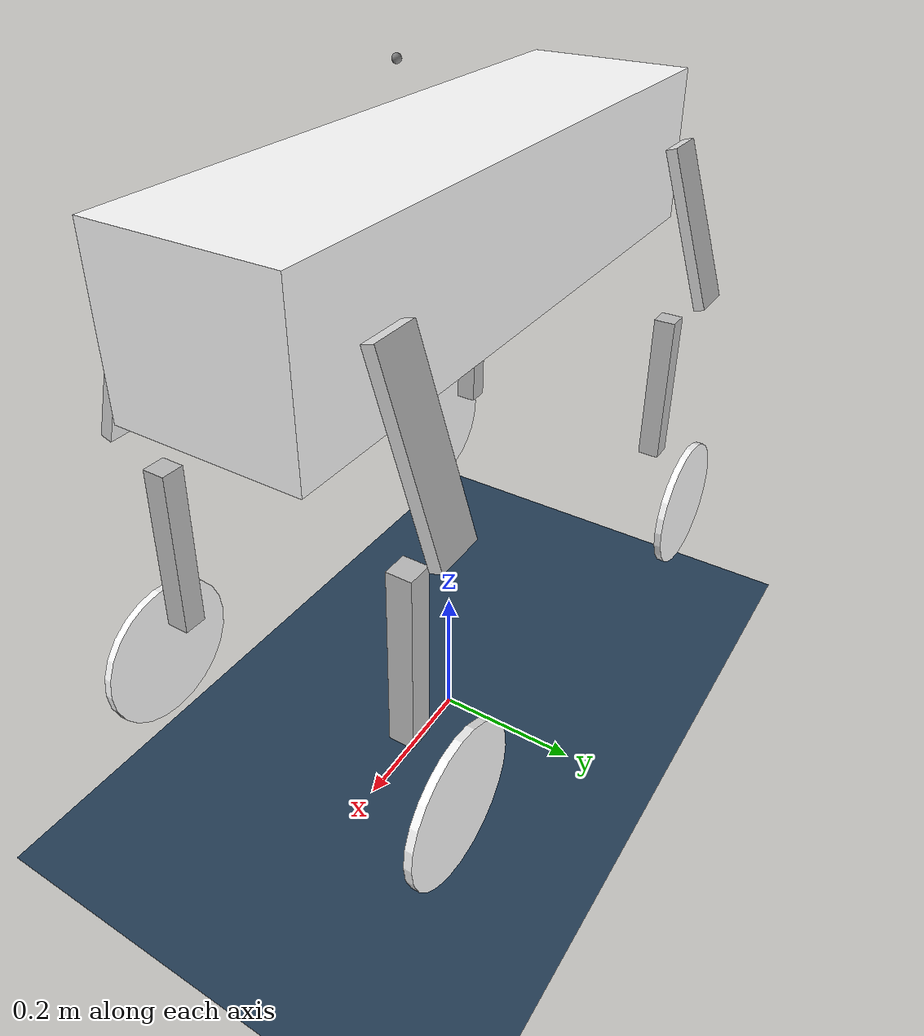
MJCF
<!-- ⚠️ 產生檔，不要手改。產生器：make_mjx_model.py -->
<!--
  乾淨的平地場景 —— 給 CPG 步態開發用。

  官方發布包裡的 scene_terrain_*.xml 都塞滿了障礙物、hfield 與地圖專用幾何，
  不適合拿來調步態。這一份只有「一塊地板 + 機器人」，是我們自己寫的。

  官方原始場景檔沒有收進版控（它們依賴 height_field.png 等外部資產），
  需要時從發布包取，見 SOURCE.md。
-->
<mujoco model="zgws flat scene (zgws_mjx_v3p)">
  <include file="zgws_mjx_v3p.xml"/>

  <statistic center="0 0 0.3" extent="1.2"/>

  <visual>
    <headlight diffuse="0.6 0.6 0.6" ambient="0.3 0.3 0.3" specular="0 0 0"/>
    <rgba haze="0.15 0.25 0.35 1"/>
    <global azimuth="-130" elevation="-20"/>
    <map znear="0.01" zfar="100"/>
  </visual>

  <asset>
    <texture type="skybox" builtin="gradient" rgb1="0.3 0.5 0.7" rgb2="0 0 0" width="512" height="3072"/>
    <texture type="2d" name="groundplane" builtin="checker" mark="edge"
             rgb1="0.2 0.3 0.4" rgb2="0.1 0.2 0.3" markrgb="0.8 0.8 0.8"
             width="300" height="300"/>
    <material name="groundplane" texture="groundplane" texuniform="true" texrepeat="5 5" reflectance="0.2"/>
  </asset>

  <worldbody>
    <light pos="0 0 3" dir="0 0 -1" directional="true"/>
    <geom name="floor" pos="0 0 0" size="0 0 0.05" type="plane" material="groundplane"/>
  </worldbody>
</mujoco>

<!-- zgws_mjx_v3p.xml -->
<mujoco model="zgws_primitive_position">
  <option iterations="6" ls_iterations="6" />
  <compiler angle="radian" meshdir="assets/" />
  <worldbody>
    <body name="base_link" pos="0 0 0.8">
      <inertial pos="-0.001406 0.00345 -0.004835" quat="-0.00434043 0.706832 -0.00540402 0.707347" mass="17.033" diaginertia="0.695866 0.661855 0.0928814" />
      <freejoint />
      <site name="imu" pos="0.0 0 0.0" />
      <site name="livox_imu" pos="0.13011 0.02329 0.17598" quat="1.0 0.0 0.0 0.0" />
      <site name="camera_imu" pos="0.29 0 0.01" />
      <body name="FAR_ABAD_LINK" pos="0.2698 -0.065 0">
        <inertial pos="0.033776 -0.02146 9.6941e-07" quat="0.351949 0.351975 0.613287 0.613289" mass="0.19789" diaginertia="0.00025478 0.00020921 0.00011958" />
        <joint name="FAR_ABAD_JOINT" pos="0 0 0" axis="1 0 0" range="-0.697 0.523" actuatorfrcrange="-150 150" frictionloss="1.85" />
        <body name="FAR_HIP_LINK" pos="0.0587 -0.045 0">
          <inertial pos="-3.2e-05 -0.065021 -0.128154" quat="0.703257 -0.0677607 0.068164 0.704409" mass="2.8754" diaginertia="0.0456037 0.045202 0.00275532" />
          <joint name="FAR_HIP_JOINT" pos="0 0 0" axis="0 1 0" range="-2.442 2.791" actuatorfrcrange="-150 150" frictionloss="1.5" />
          <geom size="0.03 0.0075 0.11" pos="0 -0.07 -0.1" quat="0.988771 -0.149438 0 0" type="box" rgba="0.84706 0.84706 0.84706 1" contype="1" conaffinity="0" />
          <body name="FAR_KNEE_LINK" pos="0 -0.0522 -0.26">
            <inertial pos="1.1e-05 0.004286 -0.115691" quat="0.707101 -0.000811046 0.000666189 0.707112" mass="0.86312" diaginertia="0.01053 0.01024 0.000477956" />
            <joint name="FAR_KNEE_JOINT" pos="0 0 0" axis="0 1 0" range="-2.801 2.801" actuatorfrcrange="-150 150" frictionloss="1.5" />
            <geom size="0.015 0.015 0.11" pos="0.005 0 -0.09" quat="0.99995 0 -0.00999983 0" type="box" rgba="0.75294 0.75294 0.75294 1" contype="1" conaffinity="0" />
            <body name="FAR_FOOT_LINK" pos="0 -0.0088 -0.28">
              <inertial pos="0 -0.039394 4.2e-05" quat="0.5 0.5 0.5 0.5" mass="1.5113" diaginertia="0.004202 0.002606 0.002603" />
              <joint name="FAR_FOOT_JOINT" pos="0 0 0" axis="0 1 0" range="-99999 99999" actuatorfrcrange="-40 40" frictionloss="0.1300" damping="0.0150" armature="0.0040" />
              <geom name="FAR_FOOT_LINK_COLL" type="cylinder" size="0.095999 0.005000" quat="0.7071068 0.7071068 0 0" pos="0.000000 -0.047000 0.000000" rgba="1 1 1 1" contype="1" conaffinity="0" />
            </body>
          </body>
        </body>
      </body>
      <body name="FBL_ABAD_LINK" pos="0.2698 0.065 0">
        <inertial pos="0.033776 0.02146 -9.6941e-07" quat="0.613283 0.613294 0.351948 0.351976" mass="0.19789" diaginertia="0.00025478 0.00020921 0.00011958" />
        <joint name="FBL_ABAD_JOINT" pos="0 0 0" axis="1 0 0" range="-0.523 0.697" actuatorfrcrange="-150 150" frictionloss="1.85" />
        <body name="FBL_HIP_LINK" pos="0.0587 0.045 0">
          <inertial pos="3.7e-05 0.065021 -0.128154" quat="0.702733 0.067692 -0.0682323 0.704931" mass="2.8754" diaginertia="0.0456037 0.045202 0.00275532" />
          <joint name="FBL_HIP_JOINT" pos="0 0 0" axis="0 1 0" range="-2.442 2.791" actuatorfrcrange="-150 150" frictionloss="1.5" />
          <geom size="0.03 0.0075 0.11" pos="0 0.07 -0.1" quat="0.988771 0.149438 0 0" type="box" rgba="0.84706 0.84706 0.84706 1" contype="1" conaffinity="0" />
          <body name="FBL_KNEE_LINK" pos="1.113e-05 0.0522 -0.26" quat="1 0 -2.14045e-05 0">
            <inertial pos="-1.1e-05 -0.004286 -0.115691" quat="0.707101 0.000811046 -0.000666189 0.707112" mass="0.86312" diaginertia="0.01053 0.01024 0.000477956" />
            <joint name="FBL_KNEE_JOINT" pos="0 0 0" axis="0 1 0" range="-2.801 2.801" actuatorfrcrange="-150 150" frictionloss="1.5" />
            <geom size="0.015 0.015 0.11" pos="0.005 0 -0.09" quat="0.99995 0 -0.00999983 0" type="box" rgba="0.75294 0.75294 0.75294 1" contype="1" conaffinity="0" />
            <body name="FBL_FOOT_LINK" pos="0 0.0088 -0.28">
              <inertial pos="0 0.039394 4.1863e-05" quat="0.5 0.5 0.5 0.5" mass="1.5113" diaginertia="0.004202 0.002606 0.002603" />
              <joint name="FBL_FOOT_JOINT" pos="0 0 0" axis="0 1 0" range="-99999 99999" actuatorfrcrange="-40 40" frictionloss="0.1300" damping="0.0150" armature="0.0040" />
              <geom name="FBL_FOOT_LINK_COLL" type="cylinder" size="0.095999 0.005000" quat="0.7071068 0.7071068 0 0" pos="0.000000 0.047000 0.000000" rgba="1 1 1 1" contype="1" conaffinity="0" />
            </body>
          </body>
        </body>
      </body>
      <body name="RAR_ABAD_LINK" pos="-0.2698 -0.065 0">
        <inertial pos="-0.033776 -0.02146 -9.6931e-07" quat="0.613283 0.613294 0.351948 0.351976" mass="0.19789" diaginertia="0.00025478 0.00020921 0.00011958" />
        <joint name="RAR_ABAD_JOINT" pos="0 0 0" axis="1 0 0" range="-0.697 0.523" actuatorfrcrange="-150 150" frictionloss="1.85" />
        <body name="RAR_HIP_LINK" pos="-0.0587 -0.045 0">
          <inertial pos="-3.7e-05 -0.065021 -0.128154" quat="0.702733 -0.067692 0.0682323 0.704931" mass="2.8754" diaginertia="0.0456037 0.045202 0.00275532" />
          <joint name="RAR_HIP_JOINT" pos="0 0 0" axis="0 1 0" range="-2.791 2.442" actuatorfrcrange="-150 150" frictionloss="1.5" />
          <geom size="0.03 0.0075 0.11" pos="0 -0.07 -0.1" quat="0.988771 -0.149438 0 0" type="box" rgba="0.847059 0.847059 0.847059 1" contype="1" conaffinity="0" />
          <body name="RAR_KNEE_LINK" pos="-1.113e-05 -0.0522 -0.26" quat="1 0 2.14045e-05 0">
            <inertial pos="1.1e-05 0.004242 -0.116154" quat="0.7071 -0.000956292 0.000810754 0.707112" mass="0.85979" diaginertia="0.0104791 0.010191 0.000474937" />
            <joint name="RAR_KNEE_JOINT" pos="0 0 0" axis="0 1 0" range="-2.801 2.801" actuatorfrcrange="-150 150" frictionloss="1.5" />
            <geom size="0.015 0.015 0.11" pos="0.005 0 -0.09" quat="0.99995 0 -0.00999983 0" type="box" rgba="0.75294 0.75294 0.75294 1" contype="1" conaffinity="0" />
            <body name="RAR_FOOT_LINK" pos="0 -0.0088 -0.28">
              <inertial pos="0 -0.039394 4.1868e-05" quat="0.5 0.5 0.5 0.5" mass="1.5113" diaginertia="0.004202 0.002606 0.002603" />
              <joint name="RAR_FOOT_JOINT" pos="0 0 0" axis="0 1 0" range="-99999 99999" actuatorfrcrange="-40 40" frictionloss="0.1300" damping="0.0150" armature="0.0040" />
              <geom name="RAR_FOOT_LINK_COLL" type="cylinder" size="0.095999 0.005000" quat="0.7071068 0.7071068 0 0" pos="0.000000 -0.047000 0.000000" rgba="1 1 1 1" contype="1" conaffinity="0" />
            </body>
          </body>
        </body>
      </body>
      <body name="RBL_ABAD_LINK" pos="-0.2698 0.065 0">
        <inertial pos="-0.033776 0.02146 9.6918e-07" quat="0.351949 0.351975 0.613287 0.613289" mass="0.19789" diaginertia="0.00025478 0.00020921 0.00011958" />
        <joint name="RBL_ABAD_JOINT" pos="0 0 0" axis="1 0 0" range="-0.523 0.697" actuatorfrcrange="-150 150" frictionloss="1.85" />
        <body name="RBL_HIP_LINK" pos="-0.0587 0.045 0">
          <inertial pos="3.7e-05 0.065021 -0.128154" quat="0.702733 0.067692 -0.0682323 0.704931" mass="2.8754" diaginertia="0.0456037 0.045202 0.00275532" />
          <joint name="RBL_HIP_JOINT" pos="0 0 0" axis="0 1 0" range="-2.791 2.442" actuatorfrcrange="-150 150" frictionloss="1.5" />
          <geom size="0.03 0.0075 0.11" pos="0 0.07 -0.1" quat="0.988771 0.149438 0 0" type="box" rgba="0.84706 0.84706 0.84706 1" contype="1" conaffinity="0" />
          <body name="RBL_KNEE_LINK" pos="1.1131e-05 0.0522 -0.26" quat="1 0 -2.14055e-05 0">
            <inertial pos="-1.1e-05 -0.004286 -0.115691" quat="0.707101 0.000811046 -0.000666189 0.707112" mass="0.86312" diaginertia="0.01053 0.01024 0.000477956" />
            <joint name="RBL_KNEE_JOINT" pos="0 0 0" axis="0 1 0" range="-2.801 2.801" actuatorfrcrange="-150 150" frictionloss="1.5" />
            <geom size="0.015 0.015 0.11" pos="0.005 0 -0.09" quat="0.99995 0 -0.00999983 0" type="box" rgba="0.752941 0.752941 0.752941 1" contype="1" conaffinity="0" />
            <body name="RBL_FOOT_LINK" pos="0 0.0088 -0.28">
              <inertial pos="0 0.039394 4.186e-05" quat="0.5 0.5 0.5 0.5" mass="1.5113" diaginertia="0.004202 0.002606 0.002603" />
              <joint name="RBL_FOOT_JOINT" pos="0 0 0" axis="0 1 0" range="-99999 99999" actuatorfrcrange="-40 40" frictionloss="0.1300" damping="0.0150" armature="0.0040" />
              <geom name="RBL_FOOT_LINK_COLL" type="cylinder" size="0.095999 0.005000" quat="0.7071068 0.7071068 0 0" pos="0.000000 0.047000 0.000000" rgba="1 1 1 1" contype="1" conaffinity="0" />
            </body>
          </body>
        </body>
      </body>
      <geom name="BASE_LINK_COLL" type="box" size="0.416641 0.115123 0.104083" pos="-0.000000 0.000123 -0.021993" rgba="1 1 1 1" contype="1" conaffinity="0" />
    </body>
  </worldbody>
  <sensor>
    <jointpos name="FR_hip_pos" joint="FAR_ABAD_JOINT" />
    <jointpos name="FR_thigh_pos" joint="FAR_HIP_JOINT" />
    <jointpos name="FR_calf_pos" joint="FAR_KNEE_JOINT" />
    <jointpos name="FR_foot_pos" joint="FAR_FOOT_JOINT" />
    <jointpos name="FL_hip_pos" joint="FBL_ABAD_JOINT" />
    <jointpos name="FL_thigh_pos" joint="FBL_HIP_JOINT" />
    <jointpos name="FL_calf_pos" joint="FBL_KNEE_JOINT" />
    <jointpos name="FL_foot_pos" joint="FBL_FOOT_JOINT" />
    <jointpos name="RR_hip_pos" joint="RAR_ABAD_JOINT" />
    <jointpos name="RR_thigh_pos" joint="RAR_HIP_JOINT" />
    <jointpos name="RR_calf_pos" joint="RAR_KNEE_JOINT" />
    <jointpos name="RR_foot_pos" joint="RAR_FOOT_JOINT" />
    <jointpos name="RL_hip_pos" joint="RBL_ABAD_JOINT" />
    <jointpos name="RL_thigh_pos" joint="RBL_HIP_JOINT" />
    <jointpos name="RL_calf_pos" joint="RBL_KNEE_JOINT" />
    <jointpos name="RL_foot_pos" joint="RBL_FOOT_JOINT" />
    <jointvel name="FR_hip_vel" joint="FAR_ABAD_JOINT" />
    <jointvel name="FR_thigh_vel" joint="FAR_HIP_JOINT" />
    <jointvel name="FR_calf_vel" joint="FAR_KNEE_JOINT" />
    <jointvel name="FR_foot_vel" joint="FAR_FOOT_JOINT" />
    <jointvel name="FL_hip_vel" joint="FBL_ABAD_JOINT" />
    <jointvel name="FL_thigh_vel" joint="FBL_HIP_JOINT" />
    <jointvel name="FL_calf_vel" joint="FBL_KNEE_JOINT" />
    <jointvel name="FL_foot_vel" joint="FBL_FOOT_JOINT" />
    <jointvel name="RR_hip_vel" joint="RAR_ABAD_JOINT" />
    <jointvel name="RR_thigh_vel" joint="RAR_HIP_JOINT" />
    <jointvel name="RR_calf_vel" joint="RAR_KNEE_JOINT" />
    <jointvel name="RR_foot_vel" joint="RAR_FOOT_JOINT" />
    <jointvel name="RL_hip_vel" joint="RBL_ABAD_JOINT" />
    <jointvel name="RL_thigh_vel" joint="RBL_HIP_JOINT" />
    <jointvel name="RL_calf_vel" joint="RBL_KNEE_JOINT" />
    <jointvel name="RL_foot_vel" joint="RBL_FOOT_JOINT" />
    <jointactuatorfrc name="FR_hip_torque" joint="FAR_ABAD_JOINT" noise="0.00" />
    <jointactuatorfrc name="FR_thigh_torque" joint="FAR_HIP_JOINT" noise="0.00" />
    <jointactuatorfrc name="FR_calf_torque" joint="FAR_KNEE_JOINT" noise="0.00" />
    <jointactuatorfrc name="FR_foot_torque" joint="FAR_FOOT_JOINT" noise="0.00" />
    <jointactuatorfrc name="FL_hip_torque" joint="FBL_ABAD_JOINT" noise="0.00" />
    <jointactuatorfrc name="FL_thigh_torque" joint="FBL_HIP_JOINT" noise="0.00" />
    <jointactuatorfrc name="FL_calf_torque" joint="FBL_KNEE_JOINT" noise="0.00" />
    <jointactuatorfrc name="FL_foot_torque" joint="FBL_FOOT_JOINT" noise="0.00" />
    <jointactuatorfrc name="RR_hip_torque" joint="RAR_ABAD_JOINT" noise="0.00" />
    <jointactuatorfrc name="RR_thigh_torque" joint="RAR_HIP_JOINT" noise="0.00" />
    <jointactuatorfrc name="RR_calf_torque" joint="RAR_KNEE_JOINT" noise="0.00" />
    <jointactuatorfrc name="RR_foot_torque" joint="RAR_FOOT_JOINT" noise="0.00" />
    <jointactuatorfrc name="RL_hip_torque" joint="RBL_ABAD_JOINT" noise="0.00" />
    <jointactuatorfrc name="RL_thigh_torque" joint="RBL_HIP_JOINT" noise="0.00" />
    <jointactuatorfrc name="RL_calf_torque" joint="RBL_KNEE_JOINT" noise="0.00" />
    <jointactuatorfrc name="RL_foot_torque" joint="RBL_FOOT_JOINT" noise="0.00" />
    <framequat name="imu_quat" objtype="site" objname="imu" />
    <gyro name="imu_gyro" site="imu" />
    <accelerometer name="imu_acc" site="imu" />
    <framepos name="frame_pos" objtype="site" objname="imu" />
    <framelinvel name="frame_vel" objtype="site" objname="imu" />
    <framequat name="livox_imu_quat" objtype="site" objname="livox_imu" />
    <gyro name="livox_imu_gyro" site="livox_imu" />
    <accelerometer name="livox_imu_acc" site="livox_imu" />
    <framepos name="livox_imu_frame_pos" objtype="site" objname="livox_imu" />
    <framelinvel name="livox_imu_frame_vel" objtype="site" objname="livox_imu" />
    <framequat name="camera_imu_quat" objtype="site" objname="camera_imu" />
    <gyro name="camera_imu_gyro" site="camera_imu" />
    <accelerometer name="camera_imu_acc" site="camera_imu" />
    <framepos name="camera_imu_frame_pos" objtype="site" objname="camera_imu" />
    <framelinvel name="camera_imu_frame_vel" objtype="site" objname="camera_imu" />
  </sensor>
  <actuator>
    <position name="FAR_ABAD_LINK" joint="FAR_ABAD_JOINT" kp="60.0" kv="2.0" forcerange="-150.0 150.0" />
    <position name="FAR_HIP_LINK" joint="FAR_HIP_JOINT" kp="250.0" kv="2.0" forcerange="-150.0 150.0" />
    <position name="FAR_KNEE_LINK" joint="FAR_KNEE_JOINT" kp="250.0" kv="2.0" forcerange="-150.0 150.0" />
    <position name="FAR_FOOT_LINK" joint="FAR_FOOT_JOINT" kp="60.0" kv="1.0" forcerange="-33.0 33.0" />
    <position name="FBL_ABAD_LINK" joint="FBL_ABAD_JOINT" kp="60.0" kv="2.0" forcerange="-150.0 150.0" />
    <position name="FBL_HIP_LINK" joint="FBL_HIP_JOINT" kp="250.0" kv="2.0" forcerange="-150.0 150.0" />
    <position name="FBL_KNEE_LINK" joint="FBL_KNEE_JOINT" kp="250.0" kv="2.0" forcerange="-150.0 150.0" />
    <position name="FBL_FOOT_LINK" joint="FBL_FOOT_JOINT" kp="60.0" kv="1.0" forcerange="-33.0 33.0" />
    <position name="RAR_ABAD_LINK" joint="RAR_ABAD_JOINT" kp="60.0" kv="2.0" forcerange="-150.0 150.0" />
    <position name="RAR_HIP_LINK" joint="RAR_HIP_JOINT" kp="250.0" kv="2.0" forcerange="-150.0 150.0" />
    <position name="RAR_KNEE_LINK" joint="RAR_KNEE_JOINT" kp="250.0" kv="2.0" forcerange="-150.0 150.0" />
    <position name="RAR_FOOT_LINK" joint="RAR_FOOT_JOINT" kp="60.0" kv="1.0" forcerange="-33.0 33.0" />
    <position name="RBL_ABAD_LINK" joint="RBL_ABAD_JOINT" kp="60.0" kv="2.0" forcerange="-150.0 150.0" />
    <position name="RBL_HIP_LINK" joint="RBL_HIP_JOINT" kp="250.0" kv="2.0" forcerange="-150.0 150.0" />
    <position name="RBL_KNEE_LINK" joint="RBL_KNEE_JOINT" kp="250.0" kv="2.0" forcerange="-150.0 150.0" />
    <position name="RBL_FOOT_LINK" joint="RBL_FOOT_JOINT" kp="60.0" kv="1.0" forcerange="-33.0 33.0" />
  </actuator>
</mujoco>
